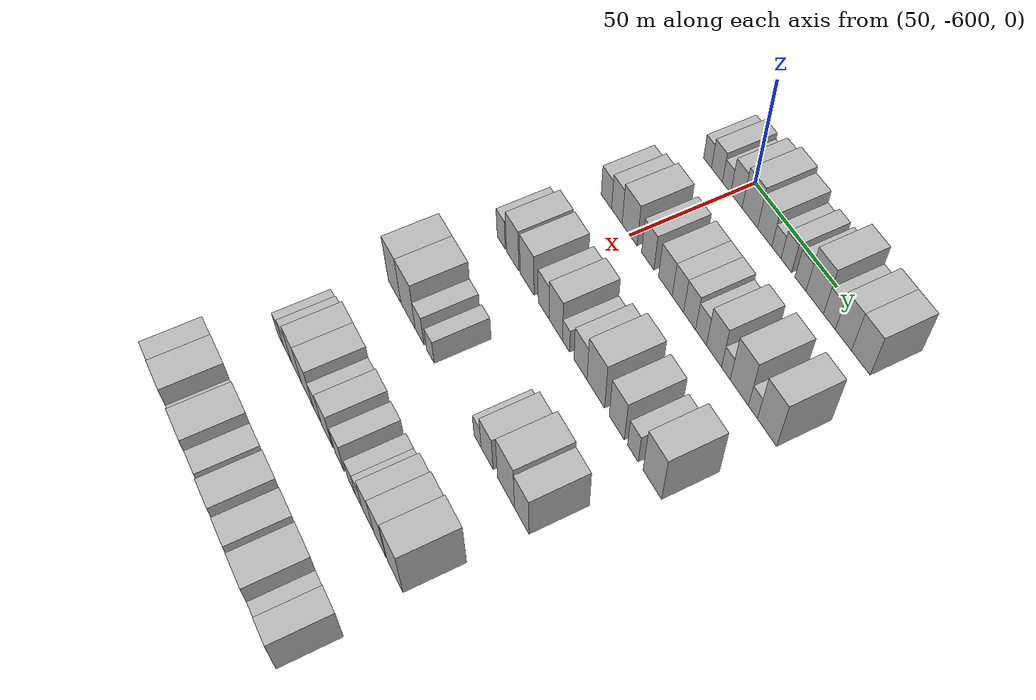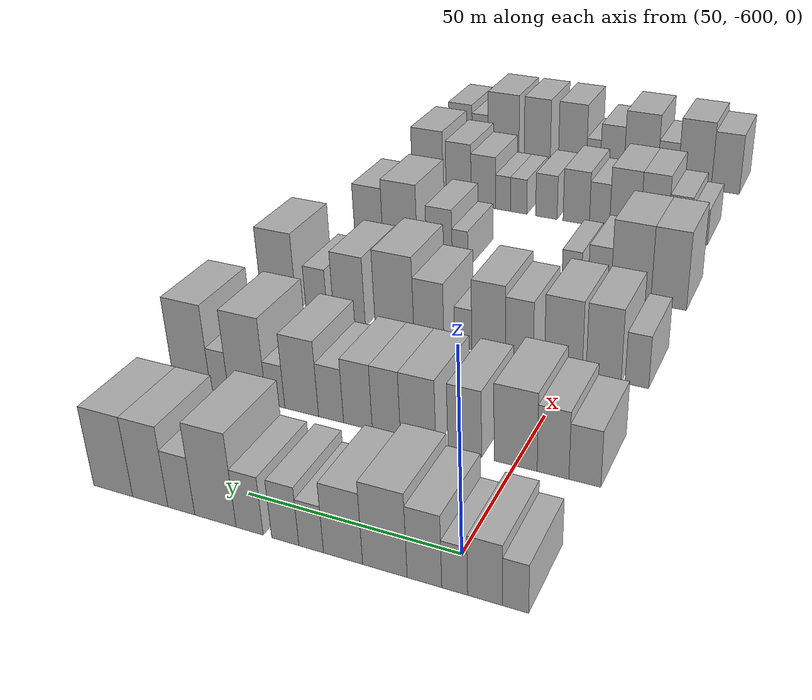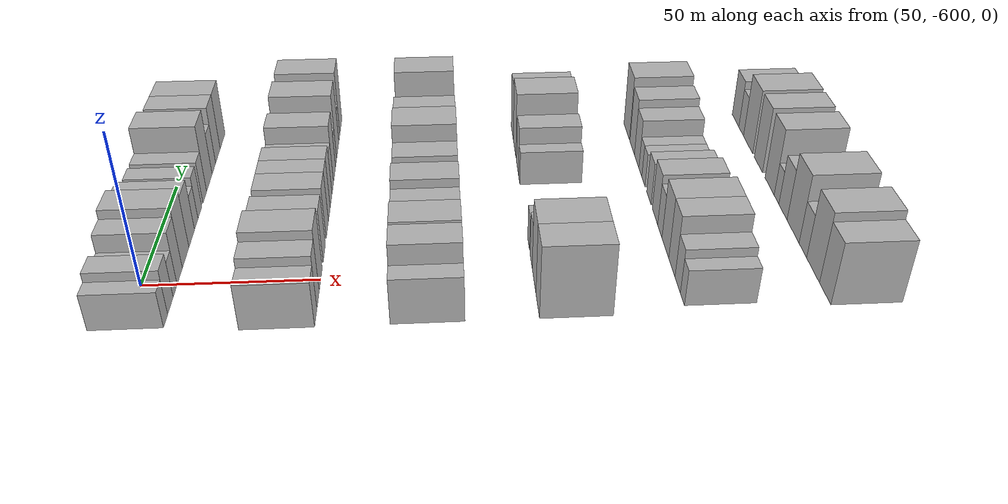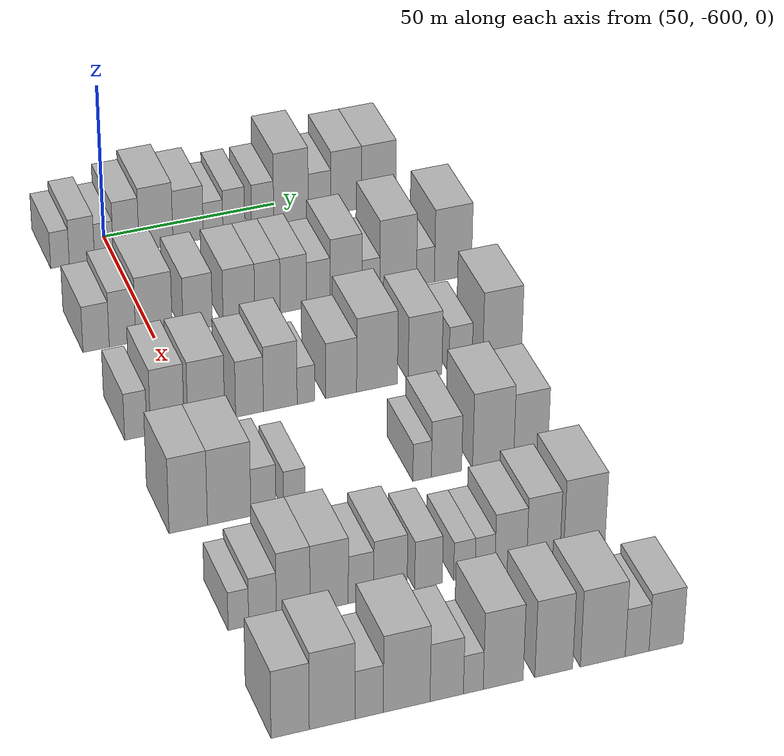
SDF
<sdf version="1.6">
 <world name="default">
  <model name="building_1">
   <static>1</static>
   <pose>50.0000 -615.3436 0 0.000000 0.000000 0.000000</pose>
   <link name="link">
    <pose>0 0 6.00 0 0 0</pose>
    <collision name="collision"><geometry><box><size>20.0000 5.3127 12.0000</size></box></geometry></collision>
    <visual name="visual">
     <cast_shadows>0</cast_shadows>
     <geometry><box><size>20.0000 5.3127 12.0000</size></box></geometry>
     <material>
      <script>
       <uri>model://HANNAS_wall/materials/scripts</uri>
       <uri>model://HANNAS_wall/materials/textures</uri>
       <name>vrc/HANNAS_wall</name>
      </script>
     </material>
    </visual>
   </link>
  </model>
  <model name="building_2">
   <static>1</static>
   <pose>50.0000 -609.0719 0 0.000000 0.000000 0.000000</pose>
   <link name="link">
    <pose>0 0 7.50 0 0 0</pose>
    <collision name="collision"><geometry><box><size>20.0000 7.2307 15.0000</size></box></geometry></collision>
    <visual name="visual">
     <cast_shadows>0</cast_shadows>
     <geometry><box><size>20.0000 7.2307 15.0000</size></box></geometry>
     <material>
      <script>
       <uri>model://HANNAS_wall/materials/scripts</uri>
       <uri>model://HANNAS_wall/materials/textures</uri>
       <name>vrc/HANNAS_wall</name>
      </script>
     </material>
    </visual>
   </link>
  </model>
  <model name="building_3">
   <static>1</static>
   <pose>50.0000 -602.7401 0 0.000000 0.000000 0.000000</pose>
   <link name="link">
    <pose>0 0 6.00 0 0 0</pose>
    <collision name="collision"><geometry><box><size>20.0000 5.4330 12.0000</size></box></geometry></collision>
    <visual name="visual">
     <cast_shadows>0</cast_shadows>
     <geometry><box><size>20.0000 5.4330 12.0000</size></box></geometry>
     <material>
      <script>
       <uri>model://HANNAS_wall/materials/scripts</uri>
       <uri>model://HANNAS_wall/materials/textures</uri>
       <name>vrc/HANNAS_wall</name>
      </script>
     </material>
    </visual>
   </link>
  </model>
  <model name="building_4">
   <static>1</static>
   <pose>50.0000 -596.3032 0 0.000000 0.000000 0.000000</pose>
   <link name="link">
    <pose>0 0 9.00 0 0 0</pose>
    <collision name="collision"><geometry><box><size>20.0000 7.4407 18.0000</size></box></geometry></collision>
    <visual name="visual">
     <cast_shadows>0</cast_shadows>
     <geometry><box><size>20.0000 7.4407 18.0000</size></box></geometry>
     <material>
      <script>
       <uri>model://HANNAS_wall/materials/scripts</uri>
       <uri>model://HANNAS_wall/materials/textures</uri>
       <name>vrc/HANNAS_wall</name>
      </script>
     </material>
    </visual>
   </link>
  </model>
  <model name="building_5">
   <static>1</static>
   <pose>50.0000 -587.6780 0 0.000000 0.000000 0.000000</pose>
   <link name="link">
    <pose>0 0 10.50 0 0 0</pose>
    <collision name="collision"><geometry><box><size>20.0000 9.8098 21.0000</size></box></geometry></collision>
    <visual name="visual">
     <cast_shadows>0</cast_shadows>
     <geometry><box><size>20.0000 9.8098 21.0000</size></box></geometry>
     <material>
      <script>
       <uri>model://HANNAS_wall/materials/scripts</uri>
       <uri>model://HANNAS_wall/materials/textures</uri>
       <name>vrc/HANNAS_wall</name>
      </script>
     </material>
    </visual>
   </link>
  </model>
  <model name="building_6">
   <static>1</static>
   <pose>50.0000 -578.3463 0 0.000000 0.000000 0.000000</pose>
   <link name="link">
    <pose>0 0 9.00 0 0 0</pose>
    <collision name="collision"><geometry><box><size>20.0000 8.8537 18.0000</size></box></geometry></collision>
    <visual name="visual">
     <cast_shadows>0</cast_shadows>
     <geometry><box><size>20.0000 8.8537 18.0000</size></box></geometry>
     <material>
      <script>
       <uri>model://HANNAS_wall/materials/scripts</uri>
       <uri>model://HANNAS_wall/materials/textures</uri>
       <name>vrc/HANNAS_wall</name>
      </script>
     </material>
    </visual>
   </link>
  </model>
  <model name="building_7">
   <static>1</static>
   <pose>50.0000 -571.0688 0 0.000000 0.000000 0.000000</pose>
   <link name="link">
    <pose>0 0 6.00 0 0 0</pose>
    <collision name="collision"><geometry><box><size>20.0000 5.7012 12.0000</size></box></geometry></collision>
    <visual name="visual">
     <cast_shadows>0</cast_shadows>
     <geometry><box><size>20.0000 5.7012 12.0000</size></box></geometry>
     <material>
      <script>
       <uri>model://HANNAS_wall/materials/scripts</uri>
       <uri>model://HANNAS_wall/materials/textures</uri>
       <name>vrc/HANNAS_wall</name>
      </script>
     </material>
    </visual>
   </link>
  </model>
  <model name="building_8">
   <static>1</static>
   <pose>50.0000 -565.0281 0 0.000000 0.000000 0.000000</pose>
   <link name="link">
    <pose>0 0 7.50 0 0 0</pose>
    <collision name="collision"><geometry><box><size>20.0000 6.3803 15.0000</size></box></geometry></collision>
    <visual name="visual">
     <cast_shadows>0</cast_shadows>
     <geometry><box><size>20.0000 6.3803 15.0000</size></box></geometry>
     <material>
      <script>
       <uri>model://HANNAS_wall/materials/scripts</uri>
       <uri>model://HANNAS_wall/materials/textures</uri>
       <name>vrc/HANNAS_wall</name>
      </script>
     </material>
    </visual>
   </link>
  </model>
  <model name="building_9">
   <static>1</static>
   <pose>50.0000 -556.5736 0 0.000000 0.000000 0.000000</pose>
   <link name="link">
    <pose>0 0 7.50 0 0 0</pose>
    <collision name="collision"><geometry><box><size>20.0000 6.5286 15.0000</size></box></geometry></collision>
    <visual name="visual">
     <cast_shadows>0</cast_shadows>
     <geometry><box><size>20.0000 6.5286 15.0000</size></box></geometry>
     <material>
      <script>
       <uri>model://HANNAS_wall/materials/scripts</uri>
       <uri>model://HANNAS_wall/materials/textures</uri>
       <name>vrc/HANNAS_wall</name>
      </script>
     </material>
    </visual>
   </link>
  </model>
  <model name="building_10">
   <static>1</static>
   <pose>50.0000 -548.2188 0 0.000000 0.000000 0.000000</pose>
   <link name="link">
    <pose>0 0 12.00 0 0 0</pose>
    <collision name="collision"><geometry><box><size>20.0000 10.1811 24.0000</size></box></geometry></collision>
    <visual name="visual">
     <cast_shadows>0</cast_shadows>
     <geometry><box><size>20.0000 10.1811 24.0000</size></box></geometry>
     <material>
      <script>
       <uri>model://HANNAS_wall/materials/scripts</uri>
       <uri>model://HANNAS_wall/materials/textures</uri>
       <name>vrc/HANNAS_wall</name>
      </script>
     </material>
    </visual>
   </link>
  </model>
  <model name="building_11">
   <static>1</static>
   <pose>50.0000 -539.7561 0 0.000000 0.000000 0.000000</pose>
   <link name="link">
    <pose>0 0 7.50 0 0 0</pose>
    <collision name="collision"><geometry><box><size>20.0000 6.7444 15.0000</size></box></geometry></collision>
    <visual name="visual">
     <cast_shadows>0</cast_shadows>
     <geometry><box><size>20.0000 6.7444 15.0000</size></box></geometry>
     <material>
      <script>
       <uri>model://HANNAS_wall/materials/scripts</uri>
       <uri>model://HANNAS_wall/materials/textures</uri>
       <name>vrc/HANNAS_wall</name>
      </script>
     </material>
    </visual>
   </link>
  </model>
  <model name="building_12">
   <static>1</static>
   <pose>50.0000 -531.8514 0 0.000000 0.000000 0.000000</pose>
   <link name="link">
    <pose>0 0 10.50 0 0 0</pose>
    <collision name="collision"><geometry><box><size>20.0000 9.0648 21.0000</size></box></geometry></collision>
    <visual name="visual">
     <cast_shadows>0</cast_shadows>
     <geometry><box><size>20.0000 9.0648 21.0000</size></box></geometry>
     <material>
      <script>
       <uri>model://HANNAS_wall/materials/scripts</uri>
       <uri>model://HANNAS_wall/materials/textures</uri>
       <name>vrc/HANNAS_wall</name>
      </script>
     </material>
    </visual>
   </link>
  </model>
  <model name="building_13">
   <static>1</static>
   <pose>50.0000 -522.1954 0 0.000000 0.000000 0.000000</pose>
   <link name="link">
    <pose>0 0 10.50 0 0 0</pose>
    <collision name="collision"><geometry><box><size>20.0000 10.2471 21.0000</size></box></geometry></collision>
    <visual name="visual">
     <cast_shadows>0</cast_shadows>
     <geometry><box><size>20.0000 10.2471 21.0000</size></box></geometry>
     <material>
      <script>
       <uri>model://HANNAS_wall/materials/scripts</uri>
       <uri>model://HANNAS_wall/materials/textures</uri>
       <name>vrc/HANNAS_wall</name>
      </script>
     </material>
    </visual>
   </link>
  </model>
  <model name="building_144">
   <static>1</static>
   <pose>90.0000 -616.3363 0 0.000000 0.000000 0.000000</pose>
   <link name="link">
    <pose>0 0 7.50 0 0 0</pose>
    <collision name="collision"><geometry><box><size>20.0000 7.3273 15.0000</size></box></geometry></collision>
    <visual name="visual">
     <cast_shadows>0</cast_shadows>
     <geometry><box><size>20.0000 7.3273 15.0000</size></box></geometry>
     <material>
      <script>
       <uri>model://HANNAS_wall/materials/scripts</uri>
       <uri>model://HANNAS_wall/materials/textures</uri>
       <name>vrc/HANNAS_wall</name>
      </script>
     </material>
    </visual>
   </link>
  </model>
  <model name="building_145">
   <static>1</static>
   <pose>90.0000 -608.9691 0 0.000000 0.000000 0.000000</pose>
   <link name="link">
    <pose>0 0 9.00 0 0 0</pose>
    <collision name="collision"><geometry><box><size>20.0000 7.4072 18.0000</size></box></geometry></collision>
    <visual name="visual">
     <cast_shadows>0</cast_shadows>
     <geometry><box><size>20.0000 7.4072 18.0000</size></box></geometry>
     <material>
      <script>
       <uri>model://HANNAS_wall/materials/scripts</uri>
       <uri>model://HANNAS_wall/materials/textures</uri>
       <name>vrc/HANNAS_wall</name>
      </script>
     </material>
    </visual>
   </link>
  </model>
  <model name="building_146">
   <static>1</static>
   <pose>90.0000 -600.1266 0 0.000000 0.000000 0.000000</pose>
   <link name="link">
    <pose>0 0 10.50 0 0 0</pose>
    <collision name="collision"><geometry><box><size>20.0000 10.2779 21.0000</size></box></geometry></collision>
    <visual name="visual">
     <cast_shadows>0</cast_shadows>
     <geometry><box><size>20.0000 10.2779 21.0000</size></box></geometry>
     <material>
      <script>
       <uri>model://HANNAS_wall/materials/scripts</uri>
       <uri>model://HANNAS_wall/materials/textures</uri>
       <name>vrc/HANNAS_wall</name>
      </script>
     </material>
    </visual>
   </link>
  </model>
  <model name="building_147">
   <static>1</static>
   <pose>90.0000 -587.8384 0 0.000000 0.000000 0.000000</pose>
   <link name="link">
    <pose>0 0 9.00 0 0 0</pose>
    <collision name="collision"><geometry><box><size>20.0000 8.2985 18.0000</size></box></geometry></collision>
    <visual name="visual">
     <cast_shadows>0</cast_shadows>
     <geometry><box><size>20.0000 8.2985 18.0000</size></box></geometry>
     <material>
      <script>
       <uri>model://HANNAS_wall/materials/scripts</uri>
       <uri>model://HANNAS_wall/materials/textures</uri>
       <name>vrc/HANNAS_wall</name>
      </script>
     </material>
    </visual>
   </link>
  </model>
  <model name="building_148">
   <static>1</static>
   <pose>90.0000 -576.1971 0 0.000000 0.000000 0.000000</pose>
   <link name="link">
    <pose>0 0 9.00 0 0 0</pose>
    <collision name="collision"><geometry><box><size>20.0000 8.9840 18.0000</size></box></geometry></collision>
    <visual name="visual">
     <cast_shadows>0</cast_shadows>
     <geometry><box><size>20.0000 8.9840 18.0000</size></box></geometry>
     <material>
      <script>
       <uri>model://HANNAS_wall/materials/scripts</uri>
       <uri>model://HANNAS_wall/materials/textures</uri>
       <name>vrc/HANNAS_wall</name>
      </script>
     </material>
    </visual>
   </link>
  </model>
  <model name="building_149">
   <static>1</static>
   <pose>90.0000 -568.0791 0 0.000000 0.000000 0.000000</pose>
   <link name="link">
    <pose>0 0 9.00 0 0 0</pose>
    <collision name="collision"><geometry><box><size>20.0000 7.2520 18.0000</size></box></geometry></collision>
    <visual name="visual">
     <cast_shadows>0</cast_shadows>
     <geometry><box><size>20.0000 7.2520 18.0000</size></box></geometry>
     <material>
      <script>
       <uri>model://HANNAS_wall/materials/scripts</uri>
       <uri>model://HANNAS_wall/materials/textures</uri>
       <name>vrc/HANNAS_wall</name>
      </script>
     </material>
    </visual>
   </link>
  </model>
  <model name="building_150">
   <static>1</static>
   <pose>90.0000 -560.6768 0 0.000000 0.000000 0.000000</pose>
   <link name="link">
    <pose>0 0 9.00 0 0 0</pose>
    <collision name="collision"><geometry><box><size>20.0000 7.5526 18.0000</size></box></geometry></collision>
    <visual name="visual">
     <cast_shadows>0</cast_shadows>
     <geometry><box><size>20.0000 7.5526 18.0000</size></box></geometry>
     <material>
      <script>
       <uri>model://HANNAS_wall/materials/scripts</uri>
       <uri>model://HANNAS_wall/materials/textures</uri>
       <name>vrc/HANNAS_wall</name>
      </script>
     </material>
    </visual>
   </link>
  </model>
  <model name="building_151">
   <static>1</static>
   <pose>90.0000 -553.5483 0 0.000000 0.000000 0.000000</pose>
   <link name="link">
    <pose>0 0 7.50 0 0 0</pose>
    <collision name="collision"><geometry><box><size>20.0000 6.7044 15.0000</size></box></geometry></collision>
    <visual name="visual">
     <cast_shadows>0</cast_shadows>
     <geometry><box><size>20.0000 6.7044 15.0000</size></box></geometry>
     <material>
      <script>
       <uri>model://HANNAS_wall/materials/scripts</uri>
       <uri>model://HANNAS_wall/materials/textures</uri>
       <name>vrc/HANNAS_wall</name>
      </script>
     </material>
    </visual>
   </link>
  </model>
  <model name="building_152">
   <static>1</static>
   <pose>90.0000 -545.5990 0 0.000000 0.000000 0.000000</pose>
   <link name="link">
    <pose>0 0 10.50 0 0 0</pose>
    <collision name="collision"><geometry><box><size>20.0000 9.1942 21.0000</size></box></geometry></collision>
    <visual name="visual">
     <cast_shadows>0</cast_shadows>
     <geometry><box><size>20.0000 9.1942 21.0000</size></box></geometry>
     <material>
      <script>
       <uri>model://HANNAS_wall/materials/scripts</uri>
       <uri>model://HANNAS_wall/materials/textures</uri>
       <name>vrc/HANNAS_wall</name>
      </script>
     </material>
    </visual>
   </link>
  </model>
  <model name="building_153">
   <static>1</static>
   <pose>90.0000 -538.4220 0 0.000000 0.000000 0.000000</pose>
   <link name="link">
    <pose>0 0 6.00 0 0 0</pose>
    <collision name="collision"><geometry><box><size>20.0000 5.1599 12.0000</size></box></geometry></collision>
    <visual name="visual">
     <cast_shadows>0</cast_shadows>
     <geometry><box><size>20.0000 5.1599 12.0000</size></box></geometry>
     <material>
      <script>
       <uri>model://HANNAS_wall/materials/scripts</uri>
       <uri>model://HANNAS_wall/materials/textures</uri>
       <name>vrc/HANNAS_wall</name>
      </script>
     </material>
    </visual>
   </link>
  </model>
  <model name="building_154">
   <static>1</static>
   <pose>90.0000 -530.5118 0 0.000000 0.000000 0.000000</pose>
   <link name="link">
    <pose>0 0 12.00 0 0 0</pose>
    <collision name="collision"><geometry><box><size>20.0000 10.6604 24.0000</size></box></geometry></collision>
    <visual name="visual">
     <cast_shadows>0</cast_shadows>
     <geometry><box><size>20.0000 10.6604 24.0000</size></box></geometry>
     <material>
      <script>
       <uri>model://HANNAS_wall/materials/scripts</uri>
       <uri>model://HANNAS_wall/materials/textures</uri>
       <name>vrc/HANNAS_wall</name>
      </script>
     </material>
    </visual>
   </link>
  </model>
  <model name="building_155">
   <static>1</static>
   <pose>90.0000 -522.5693 0 0.000000 0.000000 0.000000</pose>
   <link name="link">
    <pose>0 0 6.00 0 0 0</pose>
    <collision name="collision"><geometry><box><size>20.0000 5.2246 12.0000</size></box></geometry></collision>
    <visual name="visual">
     <cast_shadows>0</cast_shadows>
     <geometry><box><size>20.0000 5.2246 12.0000</size></box></geometry>
     <material>
      <script>
       <uri>model://HANNAS_wall/materials/scripts</uri>
       <uri>model://HANNAS_wall/materials/textures</uri>
       <name>vrc/HANNAS_wall</name>
      </script>
     </material>
    </visual>
   </link>
  </model>
  <model name="building_156">
   <static>1</static>
   <pose>90.0000 -514.5528 0 0.000000 0.000000 0.000000</pose>
   <link name="link">
    <pose>0 0 12.00 0 0 0</pose>
    <collision name="collision"><geometry><box><size>20.0000 10.8084 24.0000</size></box></geometry></collision>
    <visual name="visual">
     <cast_shadows>0</cast_shadows>
     <geometry><box><size>20.0000 10.8084 24.0000</size></box></geometry>
     <material>
      <script>
       <uri>model://HANNAS_wall/materials/scripts</uri>
       <uri>model://HANNAS_wall/materials/textures</uri>
       <name>vrc/HANNAS_wall</name>
      </script>
     </material>
    </visual>
   </link>
  </model>
  <model name="building_283">
   <static>1</static>
   <pose>130.0000 -616.9878 0 0.000000 0.000000 0.000000</pose>
   <link name="link">
    <pose>0 0 7.50 0 0 0</pose>
    <collision name="collision"><geometry><box><size>20.0000 6.0243 15.0000</size></box></geometry></collision>
    <visual name="visual">
     <cast_shadows>0</cast_shadows>
     <geometry><box><size>20.0000 6.0243 15.0000</size></box></geometry>
     <material>
      <script>
       <uri>model://HANNAS_wall/materials/scripts</uri>
       <uri>model://HANNAS_wall/materials/textures</uri>
       <name>vrc/HANNAS_wall</name>
      </script>
     </material>
    </visual>
   </link>
  </model>
  <model name="building_284">
   <static>1</static>
   <pose>130.0000 -608.4124 0 0.000000 0.000000 0.000000</pose>
   <link name="link">
    <pose>0 0 10.50 0 0 0</pose>
    <collision name="collision"><geometry><box><size>20.0000 9.1265 21.0000</size></box></geometry></collision>
    <visual name="visual">
     <cast_shadows>0</cast_shadows>
     <geometry><box><size>20.0000 9.1265 21.0000</size></box></geometry>
     <material>
      <script>
       <uri>model://HANNAS_wall/materials/scripts</uri>
       <uri>model://HANNAS_wall/materials/textures</uri>
       <name>vrc/HANNAS_wall</name>
      </script>
     </material>
    </visual>
   </link>
  </model>
  <model name="building_285">
   <static>1</static>
   <pose>130.0000 -597.8201 0 0.000000 0.000000 0.000000</pose>
   <link name="link">
    <pose>0 0 10.50 0 0 0</pose>
    <collision name="collision"><geometry><box><size>20.0000 10.0581 21.0000</size></box></geometry></collision>
    <visual name="visual">
     <cast_shadows>0</cast_shadows>
     <geometry><box><size>20.0000 10.0581 21.0000</size></box></geometry>
     <material>
      <script>
       <uri>model://HANNAS_wall/materials/scripts</uri>
       <uri>model://HANNAS_wall/materials/textures</uri>
       <name>vrc/HANNAS_wall</name>
      </script>
     </material>
    </visual>
   </link>
  </model>
  <model name="building_286">
   <static>1</static>
   <pose>130.0000 -585.9765 0 0.000000 0.000000 0.000000</pose>
   <link name="link">
    <pose>0 0 9.00 0 0 0</pose>
    <collision name="collision"><geometry><box><size>20.0000 7.6291 18.0000</size></box></geometry></collision>
    <visual name="visual">
     <cast_shadows>0</cast_shadows>
     <geometry><box><size>20.0000 7.6291 18.0000</size></box></geometry>
     <material>
      <script>
       <uri>model://HANNAS_wall/materials/scripts</uri>
       <uri>model://HANNAS_wall/materials/textures</uri>
       <name>vrc/HANNAS_wall</name>
      </script>
     </material>
    </visual>
   </link>
  </model>
  <model name="building_287">
   <static>1</static>
   <pose>130.0000 -577.5031 0 0.000000 0.000000 0.000000</pose>
   <link name="link">
    <pose>0 0 10.50 0 0 0</pose>
    <collision name="collision"><geometry><box><size>20.0000 9.3178 21.0000</size></box></geometry></collision>
    <visual name="visual">
     <cast_shadows>0</cast_shadows>
     <geometry><box><size>20.0000 9.3178 21.0000</size></box></geometry>
     <material>
      <script>
       <uri>model://HANNAS_wall/materials/scripts</uri>
       <uri>model://HANNAS_wall/materials/textures</uri>
       <name>vrc/HANNAS_wall</name>
      </script>
     </material>
    </visual>
   </link>
  </model>
  <model name="building_288">
   <static>1</static>
   <pose>130.0000 -570.4012 0 0.000000 0.000000 0.000000</pose>
   <link name="link">
    <pose>0 0 6.00 0 0 0</pose>
    <collision name="collision"><geometry><box><size>20.0000 4.8860 12.0000</size></box></geometry></collision>
    <visual name="visual">
     <cast_shadows>0</cast_shadows>
     <geometry><box><size>20.0000 4.8860 12.0000</size></box></geometry>
     <material>
      <script>
       <uri>model://HANNAS_wall/materials/scripts</uri>
       <uri>model://HANNAS_wall/materials/textures</uri>
       <name>vrc/HANNAS_wall</name>
      </script>
     </material>
    </visual>
   </link>
  </model>
  <model name="building_289">
   <static>1</static>
   <pose>130.0000 -560.6304 0 0.000000 0.000000 0.000000</pose>
   <link name="link">
    <pose>0 0 9.00 0 0 0</pose>
    <collision name="collision"><geometry><box><size>20.0000 8.6557 18.0000</size></box></geometry></collision>
    <visual name="visual">
     <cast_shadows>0</cast_shadows>
     <geometry><box><size>20.0000 8.6557 18.0000</size></box></geometry>
     <material>
      <script>
       <uri>model://HANNAS_wall/materials/scripts</uri>
       <uri>model://HANNAS_wall/materials/textures</uri>
       <name>vrc/HANNAS_wall</name>
      </script>
     </material>
    </visual>
   </link>
  </model>
  <model name="building_290">
   <static>1</static>
   <pose>130.0000 -550.5927 0 0.000000 0.000000 0.000000</pose>
   <link name="link">
    <pose>0 0 12.00 0 0 0</pose>
    <collision name="collision"><geometry><box><size>20.0000 11.4196 24.0000</size></box></geometry></collision>
    <visual name="visual">
     <cast_shadows>0</cast_shadows>
     <geometry><box><size>20.0000 11.4196 24.0000</size></box></geometry>
     <material>
      <script>
       <uri>model://HANNAS_wall/materials/scripts</uri>
       <uri>model://HANNAS_wall/materials/textures</uri>
       <name>vrc/HANNAS_wall</name>
      </script>
     </material>
    </visual>
   </link>
  </model>
  <model name="building_291">
   <static>1</static>
   <pose>130.0000 -537.1214 0 0.000000 0.000000 0.000000</pose>
   <link name="link">
    <pose>0 0 10.50 0 0 0</pose>
    <collision name="collision"><geometry><box><size>20.0000 9.5230 21.0000</size></box></geometry></collision>
    <visual name="visual">
     <cast_shadows>0</cast_shadows>
     <geometry><box><size>20.0000 9.5230 21.0000</size></box></geometry>
     <material>
      <script>
       <uri>model://HANNAS_wall/materials/scripts</uri>
       <uri>model://HANNAS_wall/materials/textures</uri>
       <name>vrc/HANNAS_wall</name>
      </script>
     </material>
    </visual>
   </link>
  </model>
  <model name="building_292">
   <static>1</static>
   <pose>130.0000 -527.0971 0 0.000000 0.000000 0.000000</pose>
   <link name="link">
    <pose>0 0 7.50 0 0 0</pose>
    <collision name="collision"><geometry><box><size>20.0000 6.5257 15.0000</size></box></geometry></collision>
    <visual name="visual">
     <cast_shadows>0</cast_shadows>
     <geometry><box><size>20.0000 6.5257 15.0000</size></box></geometry>
     <material>
      <script>
       <uri>model://HANNAS_wall/materials/scripts</uri>
       <uri>model://HANNAS_wall/materials/textures</uri>
       <name>vrc/HANNAS_wall</name>
      </script>
     </material>
    </visual>
   </link>
  </model>
  <model name="building_293">
   <static>1</static>
   <pose>130.0000 -515.3037 0 0.000000 0.000000 0.000000</pose>
   <link name="link">
    <pose>0 0 12.00 0 0 0</pose>
    <collision name="collision"><geometry><box><size>20.0000 11.0610 24.0000</size></box></geometry></collision>
    <visual name="visual">
     <cast_shadows>0</cast_shadows>
     <geometry><box><size>20.0000 11.0610 24.0000</size></box></geometry>
     <material>
      <script>
       <uri>model://HANNAS_wall/materials/scripts</uri>
       <uri>model://HANNAS_wall/materials/textures</uri>
       <name>vrc/HANNAS_wall</name>
      </script>
     </material>
    </visual>
   </link>
  </model>
  <model name="building_423">
   <static>1</static>
   <pose>170.0000 -614.9479 0 0.000000 0.000000 0.000000</pose>
   <link name="link">
    <pose>0 0 12.00 0 0 0</pose>
    <collision name="collision"><geometry><box><size>20.0000 10.1043 24.0000</size></box></geometry></collision>
    <visual name="visual">
     <cast_shadows>0</cast_shadows>
     <geometry><box><size>20.0000 10.1043 24.0000</size></box></geometry>
     <material>
      <script>
       <uri>model://HANNAS_wall/materials/scripts</uri>
       <uri>model://HANNAS_wall/materials/textures</uri>
       <name>vrc/HANNAS_wall</name>
      </script>
     </material>
    </visual>
   </link>
  </model>
  <model name="building_424">
   <static>1</static>
   <pose>170.0000 -604.1506 0 0.000000 0.000000 0.000000</pose>
   <link name="link">
    <pose>0 0 12.00 0 0 0</pose>
    <collision name="collision"><geometry><box><size>20.0000 11.4903 24.0000</size></box></geometry></collision>
    <visual name="visual">
     <cast_shadows>0</cast_shadows>
     <geometry><box><size>20.0000 11.4903 24.0000</size></box></geometry>
     <material>
      <script>
       <uri>model://HANNAS_wall/materials/scripts</uri>
       <uri>model://HANNAS_wall/materials/textures</uri>
       <name>vrc/HANNAS_wall</name>
      </script>
     </material>
    </visual>
   </link>
  </model>
  <model name="building_425">
   <static>1</static>
   <pose>170.0000 -595.0603 0 0.000000 0.000000 0.000000</pose>
   <link name="link">
    <pose>0 0 7.50 0 0 0</pose>
    <collision name="collision"><geometry><box><size>20.0000 6.6902 15.0000</size></box></geometry></collision>
    <visual name="visual">
     <cast_shadows>0</cast_shadows>
     <geometry><box><size>20.0000 6.6902 15.0000</size></box></geometry>
     <material>
      <script>
       <uri>model://HANNAS_wall/materials/scripts</uri>
       <uri>model://HANNAS_wall/materials/textures</uri>
       <name>vrc/HANNAS_wall</name>
      </script>
     </material>
    </visual>
   </link>
  </model>
  <model name="building_426">
   <static>1</static>
   <pose>170.0000 -586.7999 0 0.000000 0.000000 0.000000</pose>
   <link name="link">
    <pose>0 0 6.00 0 0 0</pose>
    <collision name="collision"><geometry><box><size>20.0000 5.8307 12.0000</size></box></geometry></collision>
    <visual name="visual">
     <cast_shadows>0</cast_shadows>
     <geometry><box><size>20.0000 5.8307 12.0000</size></box></geometry>
     <material>
      <script>
       <uri>model://HANNAS_wall/materials/scripts</uri>
       <uri>model://HANNAS_wall/materials/textures</uri>
       <name>vrc/HANNAS_wall</name>
      </script>
     </material>
    </visual>
   </link>
  </model>
  <model name="building_427">
   <static>1</static>
   <pose>170.0000 -552.3626 0 0.000000 0.000000 0.000000</pose>
   <link name="link">
    <pose>0 0 6.00 0 0 0</pose>
    <collision name="collision"><geometry><box><size>20.0000 5.0147 12.0000</size></box></geometry></collision>
    <visual name="visual">
     <cast_shadows>0</cast_shadows>
     <geometry><box><size>20.0000 5.0147 12.0000</size></box></geometry>
     <material>
      <script>
       <uri>model://HANNAS_wall/materials/scripts</uri>
       <uri>model://HANNAS_wall/materials/textures</uri>
       <name>vrc/HANNAS_wall</name>
      </script>
     </material>
    </visual>
   </link>
  </model>
  <model name="building_428">
   <static>1</static>
   <pose>170.0000 -545.7137 0 0.000000 0.000000 0.000000</pose>
   <link name="link">
    <pose>0 0 9.00 0 0 0</pose>
    <collision name="collision"><geometry><box><size>20.0000 8.2831 18.0000</size></box></geometry></collision>
    <visual name="visual">
     <cast_shadows>0</cast_shadows>
     <geometry><box><size>20.0000 8.2831 18.0000</size></box></geometry>
     <material>
      <script>
       <uri>model://HANNAS_wall/materials/scripts</uri>
       <uri>model://HANNAS_wall/materials/textures</uri>
       <name>vrc/HANNAS_wall</name>
      </script>
     </material>
    </visual>
   </link>
  </model>
  <model name="building_429">
   <static>1</static>
   <pose>170.0000 -532.9130 0 0.000000 0.000000 0.000000</pose>
   <link name="link">
    <pose>0 0 12.00 0 0 0</pose>
    <collision name="collision"><geometry><box><size>20.0000 11.3183 24.0000</size></box></geometry></collision>
    <visual name="visual">
     <cast_shadows>0</cast_shadows>
     <geometry><box><size>20.0000 11.3183 24.0000</size></box></geometry>
     <material>
      <script>
       <uri>model://HANNAS_wall/materials/scripts</uri>
       <uri>model://HANNAS_wall/materials/textures</uri>
       <name>vrc/HANNAS_wall</name>
      </script>
     </material>
    </visual>
   </link>
  </model>
  <model name="building_430">
   <static>1</static>
   <pose>170.0000 -522.5324 0 0.000000 0.000000 0.000000</pose>
   <link name="link">
    <pose>0 0 10.50 0 0 0</pose>
    <collision name="collision"><geometry><box><size>20.0000 9.4429 21.0000</size></box></geometry></collision>
    <visual name="visual">
     <cast_shadows>0</cast_shadows>
     <geometry><box><size>20.0000 9.4429 21.0000</size></box></geometry>
     <material>
      <script>
       <uri>model://HANNAS_wall/materials/scripts</uri>
       <uri>model://HANNAS_wall/materials/textures</uri>
       <name>vrc/HANNAS_wall</name>
      </script>
     </material>
    </visual>
   </link>
  </model>
  <model name="building_553">
   <static>1</static>
   <pose>210.0000 -614.3737 0 0.000000 0.000000 0.000000</pose>
   <link name="link">
    <pose>0 0 6.00 0 0 0</pose>
    <collision name="collision"><geometry><box><size>20.0000 5.2526 12.0000</size></box></geometry></collision>
    <visual name="visual">
     <cast_shadows>0</cast_shadows>
     <geometry><box><size>20.0000 5.2526 12.0000</size></box></geometry>
     <material>
      <script>
       <uri>model://HANNAS_wall/materials/scripts</uri>
       <uri>model://HANNAS_wall/materials/textures</uri>
       <name>vrc/HANNAS_wall</name>
      </script>
     </material>
    </visual>
   </link>
  </model>
  <model name="building_554">
   <static>1</static>
   <pose>210.0000 -608.1978 0 0.000000 0.000000 0.000000</pose>
   <link name="link">
    <pose>0 0 7.50 0 0 0</pose>
    <collision name="collision"><geometry><box><size>20.0000 7.0993 15.0000</size></box></geometry></collision>
    <visual name="visual">
     <cast_shadows>0</cast_shadows>
     <geometry><box><size>20.0000 7.0993 15.0000</size></box></geometry>
     <material>
      <script>
       <uri>model://HANNAS_wall/materials/scripts</uri>
       <uri>model://HANNAS_wall/materials/textures</uri>
       <name>vrc/HANNAS_wall</name>
      </script>
     </material>
    </visual>
   </link>
  </model>
  <model name="building_555">
   <static>1</static>
   <pose>210.0000 -600.2972 0 0.000000 0.000000 0.000000</pose>
   <link name="link">
    <pose>0 0 10.50 0 0 0</pose>
    <collision name="collision"><geometry><box><size>20.0000 8.7019 21.0000</size></box></geometry></collision>
    <visual name="visual">
     <cast_shadows>0</cast_shadows>
     <geometry><box><size>20.0000 8.7019 21.0000</size></box></geometry>
     <material>
      <script>
       <uri>model://HANNAS_wall/materials/scripts</uri>
       <uri>model://HANNAS_wall/materials/textures</uri>
       <name>vrc/HANNAS_wall</name>
      </script>
     </material>
    </visual>
   </link>
  </model>
  <model name="building_556">
   <static>1</static>
   <pose>210.0000 -590.9984 0 0.000000 0.000000 0.000000</pose>
   <link name="link">
    <pose>0 0 10.50 0 0 0</pose>
    <collision name="collision"><geometry><box><size>20.0000 9.8957 21.0000</size></box></geometry></collision>
    <visual name="visual">
     <cast_shadows>0</cast_shadows>
     <geometry><box><size>20.0000 9.8957 21.0000</size></box></geometry>
     <material>
      <script>
       <uri>model://HANNAS_wall/materials/scripts</uri>
       <uri>model://HANNAS_wall/materials/textures</uri>
       <name>vrc/HANNAS_wall</name>
      </script>
     </material>
    </visual>
   </link>
  </model>
  <model name="building_557">
   <static>1</static>
   <pose>210.0000 -582.7511 0 0.000000 0.000000 0.000000</pose>
   <link name="link">
    <pose>0 0 7.50 0 0 0</pose>
    <collision name="collision"><geometry><box><size>20.0000 6.5988 15.0000</size></box></geometry></collision>
    <visual name="visual">
     <cast_shadows>0</cast_shadows>
     <geometry><box><size>20.0000 6.5988 15.0000</size></box></geometry>
     <material>
      <script>
       <uri>model://HANNAS_wall/materials/scripts</uri>
       <uri>model://HANNAS_wall/materials/textures</uri>
       <name>vrc/HANNAS_wall</name>
      </script>
     </material>
    </visual>
   </link>
  </model>
  <model name="building_558">
   <static>1</static>
   <pose>210.0000 -575.0894 0 0.000000 0.000000 0.000000</pose>
   <link name="link">
    <pose>0 0 9.00 0 0 0</pose>
    <collision name="collision"><geometry><box><size>20.0000 8.7245 18.0000</size></box></geometry></collision>
    <visual name="visual">
     <cast_shadows>0</cast_shadows>
     <geometry><box><size>20.0000 8.7245 18.0000</size></box></geometry>
     <material>
      <script>
       <uri>model://HANNAS_wall/materials/scripts</uri>
       <uri>model://HANNAS_wall/materials/textures</uri>
       <name>vrc/HANNAS_wall</name>
      </script>
     </material>
    </visual>
   </link>
  </model>
  <model name="building_559">
   <static>1</static>
   <pose>210.0000 -565.1014 0 0.000000 0.000000 0.000000</pose>
   <link name="link">
    <pose>0 0 7.50 0 0 0</pose>
    <collision name="collision"><geometry><box><size>20.0000 7.2515 15.0000</size></box></geometry></collision>
    <visual name="visual">
     <cast_shadows>0</cast_shadows>
     <geometry><box><size>20.0000 7.2515 15.0000</size></box></geometry>
     <material>
      <script>
       <uri>model://HANNAS_wall/materials/scripts</uri>
       <uri>model://HANNAS_wall/materials/textures</uri>
       <name>vrc/HANNAS_wall</name>
      </script>
     </material>
    </visual>
   </link>
  </model>
  <model name="building_560">
   <static>1</static>
   <pose>210.0000 -555.6497 0 0.000000 0.000000 0.000000</pose>
   <link name="link">
    <pose>0 0 6.00 0 0 0</pose>
    <collision name="collision"><geometry><box><size>20.0000 5.6520 12.0000</size></box></geometry></collision>
    <visual name="visual">
     <cast_shadows>0</cast_shadows>
     <geometry><box><size>20.0000 5.6520 12.0000</size></box></geometry>
     <material>
      <script>
       <uri>model://HANNAS_wall/materials/scripts</uri>
       <uri>model://HANNAS_wall/materials/textures</uri>
       <name>vrc/HANNAS_wall</name>
      </script>
     </material>
    </visual>
   </link>
  </model>
  <model name="building_561">
   <static>1</static>
   <pose>210.0000 -550.2117 0 0.000000 0.000000 0.000000</pose>
   <link name="link">
    <pose>0 0 6.00 0 0 0</pose>
    <collision name="collision"><geometry><box><size>20.0000 5.2239 12.0000</size></box></geometry></collision>
    <visual name="visual">
     <cast_shadows>0</cast_shadows>
     <geometry><box><size>20.0000 5.2239 12.0000</size></box></geometry>
     <material>
      <script>
       <uri>model://HANNAS_wall/materials/scripts</uri>
       <uri>model://HANNAS_wall/materials/textures</uri>
       <name>vrc/HANNAS_wall</name>
      </script>
     </material>
    </visual>
   </link>
  </model>
  <model name="building_562">
   <static>1</static>
   <pose>210.0000 -543.3568 0 0.000000 0.000000 0.000000</pose>
   <link name="link">
    <pose>0 0 9.00 0 0 0</pose>
    <collision name="collision"><geometry><box><size>20.0000 8.4858 18.0000</size></box></geometry></collision>
    <visual name="visual">
     <cast_shadows>0</cast_shadows>
     <geometry><box><size>20.0000 8.4858 18.0000</size></box></geometry>
     <material>
      <script>
       <uri>model://HANNAS_wall/materials/scripts</uri>
       <uri>model://HANNAS_wall/materials/textures</uri>
       <name>vrc/HANNAS_wall</name>
      </script>
     </material>
    </visual>
   </link>
  </model>
  <model name="building_563">
   <static>1</static>
   <pose>210.0000 -534.6733 0 0.000000 0.000000 0.000000</pose>
   <link name="link">
    <pose>0 0 10.50 0 0 0</pose>
    <collision name="collision"><geometry><box><size>20.0000 8.8813 21.0000</size></box></geometry></collision>
    <visual name="visual">
     <cast_shadows>0</cast_shadows>
     <geometry><box><size>20.0000 8.8813 21.0000</size></box></geometry>
     <material>
      <script>
       <uri>model://HANNAS_wall/materials/scripts</uri>
       <uri>model://HANNAS_wall/materials/textures</uri>
       <name>vrc/HANNAS_wall</name>
      </script>
     </material>
    </visual>
   </link>
  </model>
  <model name="building_564">
   <static>1</static>
   <pose>210.0000 -523.6894 0 0.000000 0.000000 0.000000</pose>
   <link name="link">
    <pose>0 0 12.00 0 0 0</pose>
    <collision name="collision"><geometry><box><size>20.0000 11.0865 24.0000</size></box></geometry></collision>
    <visual name="visual">
     <cast_shadows>0</cast_shadows>
     <geometry><box><size>20.0000 11.0865 24.0000</size></box></geometry>
     <material>
      <script>
       <uri>model://HANNAS_wall/materials/scripts</uri>
       <uri>model://HANNAS_wall/materials/textures</uri>
       <name>vrc/HANNAS_wall</name>
      </script>
     </material>
    </visual>
   </link>
  </model>
  <model name="building_688">
   <static>1</static>
   <pose>250.0000 -614.2519 0 0.000000 0.000000 0.000000</pose>
   <link name="link">
    <pose>0 0 10.50 0 0 0</pose>
    <collision name="collision"><geometry><box><size>20.0000 9.4963 21.0000</size></box></geometry></collision>
    <visual name="visual">
     <cast_shadows>0</cast_shadows>
     <geometry><box><size>20.0000 9.4963 21.0000</size></box></geometry>
     <material>
      <script>
       <uri>model://HANNAS_wall/materials/scripts</uri>
       <uri>model://HANNAS_wall/materials/textures</uri>
       <name>vrc/HANNAS_wall</name>
      </script>
     </material>
    </visual>
   </link>
  </model>
  <model name="building_689">
   <static>1</static>
   <pose>250.0000 -603.7822 0 0.000000 0.000000 0.000000</pose>
   <link name="link">
    <pose>0 0 12.00 0 0 0</pose>
    <collision name="collision"><geometry><box><size>20.0000 11.4430 24.0000</size></box></geometry></collision>
    <visual name="visual">
     <cast_shadows>0</cast_shadows>
     <geometry><box><size>20.0000 11.4430 24.0000</size></box></geometry>
     <material>
      <script>
       <uri>model://HANNAS_wall/materials/scripts</uri>
       <uri>model://HANNAS_wall/materials/textures</uri>
       <name>vrc/HANNAS_wall</name>
      </script>
     </material>
    </visual>
   </link>
  </model>
  <model name="building_690">
   <static>1</static>
   <pose>250.0000 -594.5342 0 0.000000 0.000000 0.000000</pose>
   <link name="link">
    <pose>0 0 7.50 0 0 0</pose>
    <collision name="collision"><geometry><box><size>20.0000 7.0529 15.0000</size></box></geometry></collision>
    <visual name="visual">
     <cast_shadows>0</cast_shadows>
     <geometry><box><size>20.0000 7.0529 15.0000</size></box></geometry>
     <material>
      <script>
       <uri>model://HANNAS_wall/materials/scripts</uri>
       <uri>model://HANNAS_wall/materials/textures</uri>
       <name>vrc/HANNAS_wall</name>
      </script>
     </material>
    </visual>
   </link>
  </model>
  <model name="building_691">
   <static>1</static>
   <pose>250.0000 -585.0954 0 0.000000 0.000000 0.000000</pose>
   <link name="link">
    <pose>0 0 12.00 0 0 0</pose>
    <collision name="collision"><geometry><box><size>20.0000 11.8247 24.0000</size></box></geometry></collision>
    <visual name="visual">
     <cast_shadows>0</cast_shadows>
     <geometry><box><size>20.0000 11.8247 24.0000</size></box></geometry>
     <material>
      <script>
       <uri>model://HANNAS_wall/materials/scripts</uri>
       <uri>model://HANNAS_wall/materials/textures</uri>
       <name>vrc/HANNAS_wall</name>
      </script>
     </material>
    </visual>
   </link>
  </model>
  <model name="building_692">
   <static>1</static>
   <pose>250.0000 -574.9445 0 0.000000 0.000000 0.000000</pose>
   <link name="link">
    <pose>0 0 9.00 0 0 0</pose>
    <collision name="collision"><geometry><box><size>20.0000 8.4770 18.0000</size></box></geometry></collision>
    <visual name="visual">
     <cast_shadows>0</cast_shadows>
     <geometry><box><size>20.0000 8.4770 18.0000</size></box></geometry>
     <material>
      <script>
       <uri>model://HANNAS_wall/materials/scripts</uri>
       <uri>model://HANNAS_wall/materials/textures</uri>
       <name>vrc/HANNAS_wall</name>
      </script>
     </material>
    </visual>
   </link>
  </model>
  <model name="building_693">
   <static>1</static>
   <pose>250.0000 -568.1824 0 0.000000 0.000000 0.000000</pose>
   <link name="link">
    <pose>0 0 6.00 0 0 0</pose>
    <collision name="collision"><geometry><box><size>20.0000 5.0472 12.0000</size></box></geometry></collision>
    <visual name="visual">
     <cast_shadows>0</cast_shadows>
     <geometry><box><size>20.0000 5.0472 12.0000</size></box></geometry>
     <material>
      <script>
       <uri>model://HANNAS_wall/materials/scripts</uri>
       <uri>model://HANNAS_wall/materials/textures</uri>
       <name>vrc/HANNAS_wall</name>
      </script>
     </material>
    </visual>
   </link>
  </model>
  <model name="building_694">
   <static>1</static>
   <pose>250.0000 -560.5409 0 0.000000 0.000000 0.000000</pose>
   <link name="link">
    <pose>0 0 12.00 0 0 0</pose>
    <collision name="collision"><geometry><box><size>20.0000 10.2357 24.0000</size></box></geometry></collision>
    <visual name="visual">
     <cast_shadows>0</cast_shadows>
     <geometry><box><size>20.0000 10.2357 24.0000</size></box></geometry>
     <material>
      <script>
       <uri>model://HANNAS_wall/materials/scripts</uri>
       <uri>model://HANNAS_wall/materials/textures</uri>
       <name>vrc/HANNAS_wall</name>
      </script>
     </material>
    </visual>
   </link>
  </model>
  <model name="building_695">
   <static>1</static>
   <pose>250.0000 -547.5417 0 0.000000 0.000000 0.000000</pose>
   <link name="link">
    <pose>0 0 12.00 0 0 0</pose>
    <collision name="collision"><geometry><box><size>20.0000 9.7627 24.0000</size></box></geometry></collision>
    <visual name="visual">
     <cast_shadows>0</cast_shadows>
     <geometry><box><size>20.0000 9.7627 24.0000</size></box></geometry>
     <material>
      <script>
       <uri>model://HANNAS_wall/materials/scripts</uri>
       <uri>model://HANNAS_wall/materials/textures</uri>
       <name>vrc/HANNAS_wall</name>
      </script>
     </material>
    </visual>
   </link>
  </model>
  <model name="building_696">
   <static>1</static>
   <pose>250.0000 -534.8393 0 0.000000 0.000000 0.000000</pose>
   <link name="link">
    <pose>0 0 12.00 0 0 0</pose>
    <collision name="collision"><geometry><box><size>20.0000 11.6421 24.0000</size></box></geometry></collision>
    <visual name="visual">
     <cast_shadows>0</cast_shadows>
     <geometry><box><size>20.0000 11.6421 24.0000</size></box></geometry>
     <material>
      <script>
       <uri>model://HANNAS_wall/materials/scripts</uri>
       <uri>model://HANNAS_wall/materials/textures</uri>
       <name>vrc/HANNAS_wall</name>
      </script>
     </material>
    </visual>
   </link>
  </model>
  <model name="building_697">
   <static>1</static>
   <pose>250.0000 -525.9051 0 0.000000 0.000000 0.000000</pose>
   <link name="link">
    <pose>0 0 7.50 0 0 0</pose>
    <collision name="collision"><geometry><box><size>20.0000 6.2262 15.0000</size></box></geometry></collision>
    <visual name="visual">
     <cast_shadows>0</cast_shadows>
     <geometry><box><size>20.0000 6.2262 15.0000</size></box></geometry>
     <material>
      <script>
       <uri>model://HANNAS_wall/materials/scripts</uri>
       <uri>model://HANNAS_wall/materials/textures</uri>
       <name>vrc/HANNAS_wall</name>
      </script>
     </material>
    </visual>
   </link>
  </model>
  <model name="building_698">
   <static>1</static>
   <pose>250.0000 -518.3184 0 0.000000 0.000000 0.000000</pose>
   <link name="link">
    <pose>0 0 9.00 0 0 0</pose>
    <collision name="collision"><geometry><box><size>20.0000 8.9473 18.0000</size></box></geometry></collision>
    <visual name="visual">
     <cast_shadows>0</cast_shadows>
     <geometry><box><size>20.0000 8.9473 18.0000</size></box></geometry>
     <material>
      <script>
       <uri>model://HANNAS_wall/materials/scripts</uri>
       <uri>model://HANNAS_wall/materials/textures</uri>
       <name>vrc/HANNAS_wall</name>
      </script>
     </material>
    </visual>
   </link>
  </model>
 </world>
</sdf>
